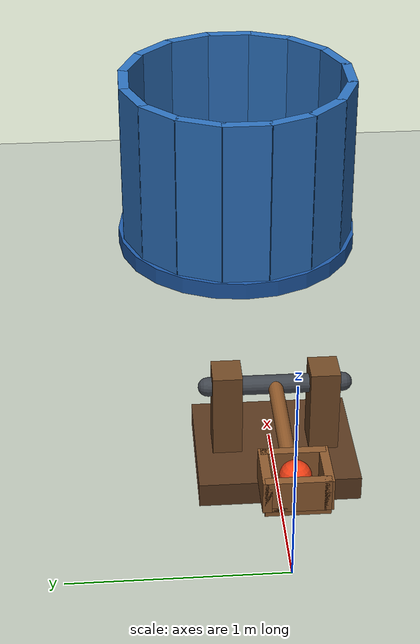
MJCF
<mujoco model="spring_catapult_into_bucket">
  <compiler angle="radian"/>
  <option timestep="0.002" gravity="0 0 -9.81" integrator="implicitfast" iterations="80"/>
  <size njmax="1000" nconmax="200"/>

  <worldbody>
    <light name="overhead" pos="1 -3 6" dir="0 0.3 -1" diffuse="0.9 0.9 0.9"/>
    <geom name="floor" type="plane" size="7 5 0.1" pos="0 0 0" rgba="0.75 0.78 0.73 1" friction="0.8 0.005 0.0001"/>

    <body name="catapult" pos="0.8 0 0.45">
      <geom name="catapult_base" type="box" pos="0 0 -0.39" size="0.32 0.38 0.06" rgba="0.35 0.22 0.12 1" contype="0" conaffinity="0"/>
      <geom name="catapult_support_left" type="box" pos="0 -0.23 -0.15" size="0.08 0.07 0.24" rgba="0.45 0.29 0.15 1" contype="0" conaffinity="0"/>
      <geom name="catapult_support_right" type="box" pos="0 0.23 -0.15" size="0.08 0.07 0.24" rgba="0.45 0.29 0.15 1" contype="0" conaffinity="0"/>
      <geom name="catapult_axle" type="capsule" fromto="0 -0.32 0 0 0.32 0" size="0.045" rgba="0.25 0.27 0.3 1" contype="0" conaffinity="0"/>

      <body name="catapult_arm" pos="0 0 0">
        <inertial pos="-0.4 0 0" mass="0.5" diaginertia="0.002 0.12 0.12"/>
        <joint name="catapult_hinge" type="hinge" axis="0 1 0" limited="true" range="0 0.785398" stiffness="12" springref="1.2" damping="0.03" solreflimit="0.004 1" solimplimit="0.99 0.999 0.001"/>
        <geom name="catapult_beam" type="capsule" fromto="0 0 0 -0.8 0 0" size="0.035" rgba="0.58 0.36 0.17 1" contype="0" conaffinity="0"/>
        <geom name="catapult_cup_floor" type="box" pos="-0.8 0 0" size="0.12 0.14 0.02" rgba="0.55 0.35 0.18 1" priority="1" friction="0.001 0.00001 0.00001" solref="0.006 1" solimp="0.95 0.99 0.001"/>
        <geom name="catapult_cup_outer_wall" type="box" pos="-0.9 0 0.075" size="0.02 0.14 0.075" rgba="0.55 0.35 0.18 1" priority="1" friction="0.001 0.00001 0.00001" solref="0.006 1" solimp="0.95 0.99 0.001"/>
        <geom name="catapult_cup_inner_wall" type="box" pos="-0.7 0 0.075" size="0.02 0.14 0.075" rgba="0.55 0.35 0.18 1" priority="1" friction="0.001 0.00001 0.00001" solref="0.006 1" solimp="0.95 0.99 0.001"/>
        <geom name="catapult_cup_left_wall" type="box" pos="-0.8 -0.13 0.075" size="0.12 0.02 0.075" rgba="0.55 0.35 0.18 1" priority="1" friction="0.001 0.00001 0.00001" solref="0.006 1" solimp="0.95 0.99 0.001"/>
        <geom name="catapult_cup_right_wall" type="box" pos="-0.8 0.13 0.075" size="0.12 0.02 0.075" rgba="0.55 0.35 0.18 1" priority="1" friction="0.001 0.00001 0.00001" solref="0.006 1" solimp="0.95 0.99 0.001"/>
      </body>
    </body>

    <body name="ball" pos="0 0 0.54">
      <freejoint name="ball_free"/>
      <geom name="ball" type="sphere" size="0.07" mass="0.15" rgba="0.95 0.25 0.08 1" friction="0.6 0.005 0.0001" solref="0.008 1" solimp="0.95 0.99 0.001"/>
    </body>

    <body name="bucket" pos="3 0 0.54">
      <geom name="bucket_base" type="cylinder" pos="0 0 -0.49" size="0.72 0.05" rgba="0.12 0.35 0.65 1" priority="1" friction="0.9 0.01 0.001" solref="0.008 1" solimp="0.95 0.99 0.001"/>
      <geom name="bucket_wall_00" type="box" pos="0.66 0 0" euler="0 0 0" size="0.03 0.14 0.54" rgba="0.18 0.45 0.75 1" priority="1" friction="0.9 0.01 0.001" solref="0.008 1"/>
      <geom name="bucket_wall_01" type="box" pos="0.609761 0.252571 0" euler="0 0 0.392699" size="0.03 0.14 0.54" rgba="0.18 0.45 0.75 1" priority="1" friction="0.9 0.01 0.001" solref="0.008 1"/>
      <geom name="bucket_wall_02" type="box" pos="0.466690 0.466690 0" euler="0 0 0.785398" size="0.03 0.14 0.54" rgba="0.18 0.45 0.75 1" priority="1" friction="0.9 0.01 0.001" solref="0.008 1"/>
      <geom name="bucket_wall_03" type="box" pos="0.252571 0.609761 0" euler="0 0 1.178097" size="0.03 0.14 0.54" rgba="0.18 0.45 0.75 1" priority="1" friction="0.9 0.01 0.001" solref="0.008 1"/>
      <geom name="bucket_wall_04" type="box" pos="0 0.66 0" euler="0 0 1.570796" size="0.03 0.14 0.54" rgba="0.18 0.45 0.75 1" priority="1" friction="0.9 0.01 0.001" solref="0.008 1"/>
      <geom name="bucket_wall_05" type="box" pos="-0.252571 0.609761 0" euler="0 0 1.963495" size="0.03 0.14 0.54" rgba="0.18 0.45 0.75 1" priority="1" friction="0.9 0.01 0.001" solref="0.008 1"/>
      <geom name="bucket_wall_06" type="box" pos="-0.466690 0.466690 0" euler="0 0 2.356194" size="0.03 0.14 0.54" rgba="0.18 0.45 0.75 1" priority="1" friction="0.9 0.01 0.001" solref="0.008 1"/>
      <geom name="bucket_wall_07" type="box" pos="-0.609761 0.252571 0" euler="0 0 2.748894" size="0.03 0.14 0.54" rgba="0.18 0.45 0.75 1" priority="1" friction="0.9 0.01 0.001" solref="0.008 1"/>
      <geom name="bucket_wall_08" type="box" pos="-0.66 0 0" euler="0 0 3.141593" size="0.03 0.14 0.54" rgba="0.18 0.45 0.75 1" priority="1" friction="0.9 0.01 0.001" solref="0.008 1"/>
      <geom name="bucket_wall_09" type="box" pos="-0.609761 -0.252571 0" euler="0 0 3.534292" size="0.03 0.14 0.54" rgba="0.18 0.45 0.75 1" priority="1" friction="0.9 0.01 0.001" solref="0.008 1"/>
      <geom name="bucket_wall_10" type="box" pos="-0.466690 -0.466690 0" euler="0 0 3.926991" size="0.03 0.14 0.54" rgba="0.18 0.45 0.75 1" priority="1" friction="0.9 0.01 0.001" solref="0.008 1"/>
      <geom name="bucket_wall_11" type="box" pos="-0.252571 -0.609761 0" euler="0 0 4.319690" size="0.03 0.14 0.54" rgba="0.18 0.45 0.75 1" priority="1" friction="0.9 0.01 0.001" solref="0.008 1"/>
      <geom name="bucket_wall_12" type="box" pos="0 -0.66 0" euler="0 0 4.712389" size="0.03 0.14 0.54" rgba="0.18 0.45 0.75 1" priority="1" friction="0.9 0.01 0.001" solref="0.008 1"/>
      <geom name="bucket_wall_13" type="box" pos="0.252571 -0.609761 0" euler="0 0 5.105088" size="0.03 0.14 0.54" rgba="0.18 0.45 0.75 1" priority="1" friction="0.9 0.01 0.001" solref="0.008 1"/>
      <geom name="bucket_wall_14" type="box" pos="0.466690 -0.466690 0" euler="0 0 5.497787" size="0.03 0.14 0.54" rgba="0.18 0.45 0.75 1" priority="1" friction="0.9 0.01 0.001" solref="0.008 1"/>
      <geom name="bucket_wall_15" type="box" pos="0.609761 -0.252571 0" euler="0 0 5.890486" size="0.03 0.14 0.54" rgba="0.18 0.45 0.75 1" priority="1" friction="0.9 0.01 0.001" solref="0.008 1"/>
    </body>
  </worldbody>

  <keyframe>
    <key name="start" qpos="0 0 0 0.54 1 0 0 0" qvel="0 0 0 0 0 0 0"/>
  </keyframe>
</mujoco>
